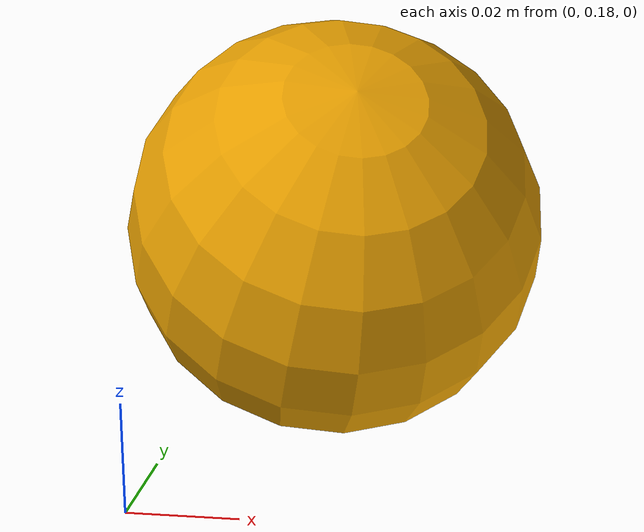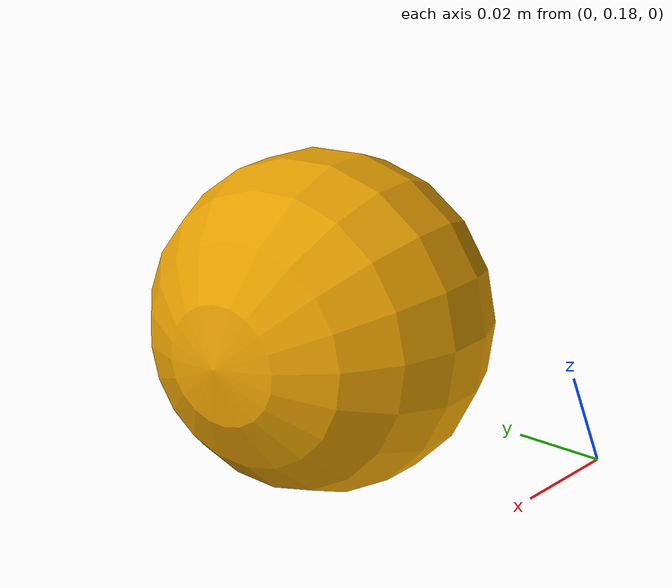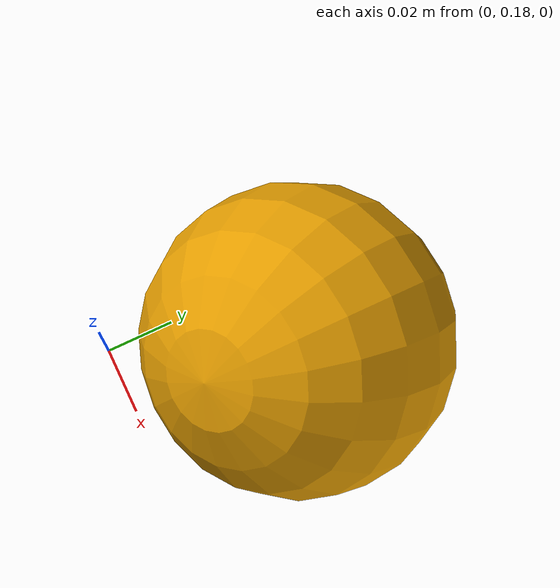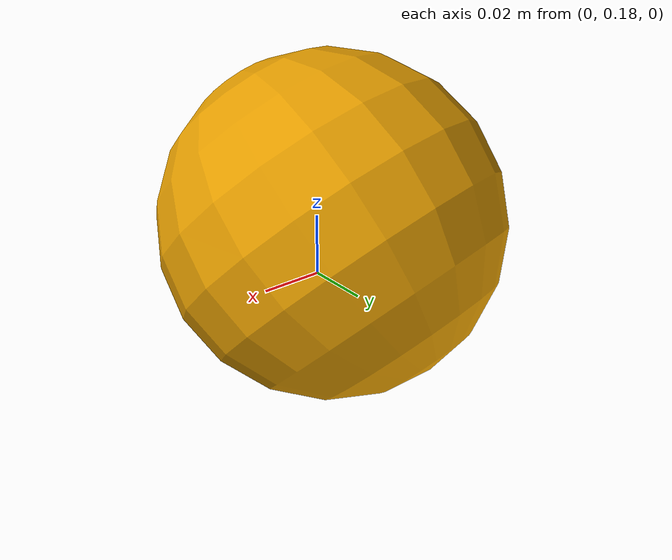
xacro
<robot xmlns:xacro="http://www.ros.org/wiki/xacro" name="primitives">
  <xacro:property name="shape_name" value="Sphere" />
  <xacro:property name="length" value="0.0575" />
  <xacro:property name="width" value="0.0623" />
  <xacro:property name="height" value="0.0776" />
  <xacro:property name="radius" value="0.0416" />
  <xacro:property name="xyz" value="0.0312 0.2264 0.0416" />
  <xacro:property name="rpy" value="-2.8661 2.4076 2.2146" />
  <xacro:property name="mass" value="1.902" />
  <xacro:property name="static" value="True" />
  <xacro:property name="mu" value="0.517057138131" />
  <xacro:property name="mu2" value="0.517057138131" />

  <xacro:include filename="$(find franka_description)/robots/utils.xacro" />

  <xacro:if value="${shape_name == 'Box'}">
    <link name="Box">
      <inertial>
        <origin rpy="${rpy}" xyz="${xyz}" />
        <mass value="${mass}" />
        <xacro:cuboid_inertia_def height="${height}" length="${length}" mass="${mass}" width="${width}" />
      </inertial>
      <visual>
        <origin rpy="${rpy}" xyz="${xyz}" />
        <geometry>
          <box size="${length} ${width} ${height}" />
        </geometry>
      </visual>
      <collision>
        <origin rpy="${rpy}" xyz="${xyz}" />
        <geometry>
          <box size="${length} ${width} ${height}" />
        </geometry>
      </collision>
      <surface>
        <friction>
          <ode>
            <mu>"${mu}"</mu>
            <mu2>"${mu2}"</mu2>
          </ode>
        </friction>
      </surface>
    </link>
  </xacro:if>

  <xacro:if value="${shape_name == 'Sphere'}">
    <link name="Sphere">
      <inertial>
        <origin rpy="${rpy}" xyz="${xyz}" />
        <mass value="${mass}" />
        <xacro:sphere_inertia_def mass="${mass}" radius="${radius}" />
      </inertial>
      <visual>
        <origin rpy="${rpy}" xyz="${xyz}" />
        <geometry>
          <sphere radius="${radius}" />
        </geometry>
      </visual>
      <collision>
        <origin rpy="${rpy}" xyz="${xyz}" />
        <geometry>
          <sphere radius="${radius}" />
        </geometry>
      </collision>
      <surface>
        <friction>
          <ode>
            <mu>"${mu}"</mu>
            <mu2>"${mu2}"</mu2>
          </ode>
        </friction>
      </surface>
    </link>
  </xacro:if>

  <xacro:if value="${shape_name == 'Cylinder'}">
    <link name="Cylinder">
      <inertial>
        <origin rpy="${rpy}" xyz="${xyz}" />
        <mass value="${mass}" />
        <xacro:cylinder_inertia_def length="${length}" mass="${mass}" radius="${radius}" />
      </inertial>
      <visual>
        <origin rpy="${rpy}" xyz="${xyz}" />
        <geometry>
          <cylinder length="${length}" radius="${radius}" />
        </geometry>
      </visual>
      <collision>
        <origin rpy="${rpy}" xyz="${xyz}" />
        <geometry>
          <cylinder length="${length}" radius="${radius}" />
        </geometry>
      </collision>
      <surface>
        <friction>
          <ode>
            <mu>"${mu}"</mu>
            <mu2>"${mu2}"</mu2>
          </ode>
        </friction>
      </surface>
    </link>
  </xacro:if>

  <gazebo>
    <static>${static}</static>
  </gazebo>
</robot>

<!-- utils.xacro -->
<robot xmlns:xacro="http://www.ros.org/wiki/xacro">
  <xacro:macro name="gazebo-friction" params="link mu">
    <gazebo reference="${link}">
      <collision>
        <max_contacts>10</max_contacts>
        <surface>
          <contact>
            <ode>
              <!-- These two parameter need application specific tuning. -->
              <!-- Usually you want no "snap out" velocity and a generous -->
              <!-- penetration depth to keep the grasping stable -->
              <max_vel>0</max_vel>
              <min_depth>0.003</min_depth>
            </ode>
          </contact>
          <friction>
            <ode>
              <mu>${mu}</mu>
              <mu2>${mu}</mu2>
            </ode>
          </friction>
          <bounce/>
        </surface>
      </collision>
    </gazebo>
  </xacro:macro>

  <xacro:macro name="inertia-cylinder" params="mass radius h">
    <inertial>
      <mass value="${mass}" />
      <inertia ixx="${1./12 * mass * (3 * radius**2 + h**2)}" ixy = "0" ixz = "0"
               iyy="${1./12 * mass * (3 * radius**2 + h**2)}" iyz = "0"
               izz="${1./2  * mass * radius**2}" />
    </inertial>
  </xacro:macro>

  <!-- taken from https://github.com/epfl-lasa/kuka-lwr-ros/blob/2533aa1bb521d531845cea45c93a4ded1ccf6539/kuka_lwr/lwr_description/model/utils.xacro -->
  <xacro:property name="M_PI" value="3.1415926535897931"/>

  <!-- Little helper macro to define the inertia matrix needed for links. -->
  <xacro:macro name="cuboid_inertia_def" params="width height length mass">
    <inertia ixx="${mass * (height * height + length * length) / 12}"
             iyy="${mass * (width * width + length * length) / 12}"
             izz="${mass * (width * width + height * height) / 12}"
             ixy="0" iyz="0" ixz="0"/>
  </xacro:macro>

  <!-- length is along the z-axis! -->
  <xacro:macro name="cylinder_inertia_def" params="radius length mass">
    <inertia ixx="${mass * (3 * radius * radius + length * length) / 12}"
             iyy="${mass * (3 * radius * radius + length * length) / 12}"
             izz="${mass * radius* radius / 2}"
             ixy="0" iyz="0" ixz="0"/>
  </xacro:macro>

  <xacro:macro name="sphere_inertia_def" params="radius mass">
    <inertia ixx="${2 * mass * radius * radius / 5}"
             iyy="${2 * mass * radius * radius / 5}"
             izz="${2 * mass * radius * radius / 5}"
             ixy="0" iyz="0" ixz="0"/>
  </xacro:macro>

</robot>
